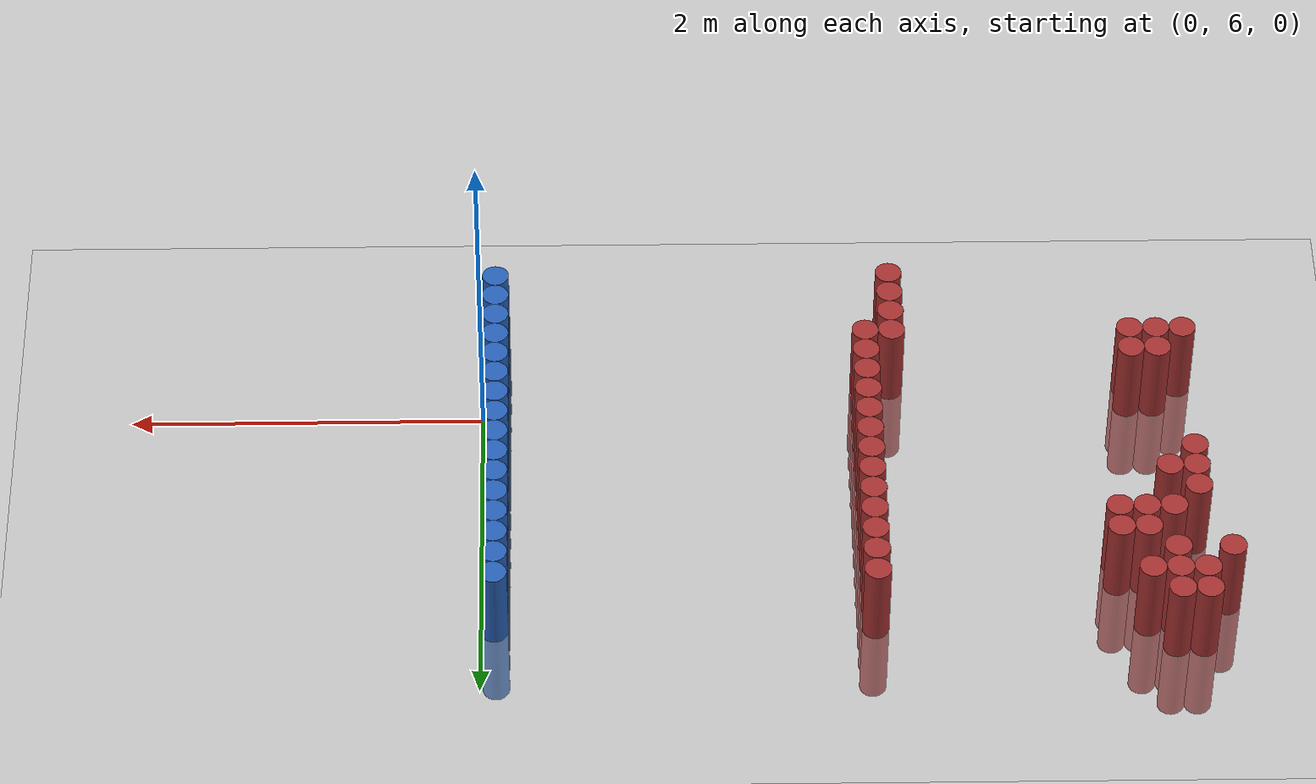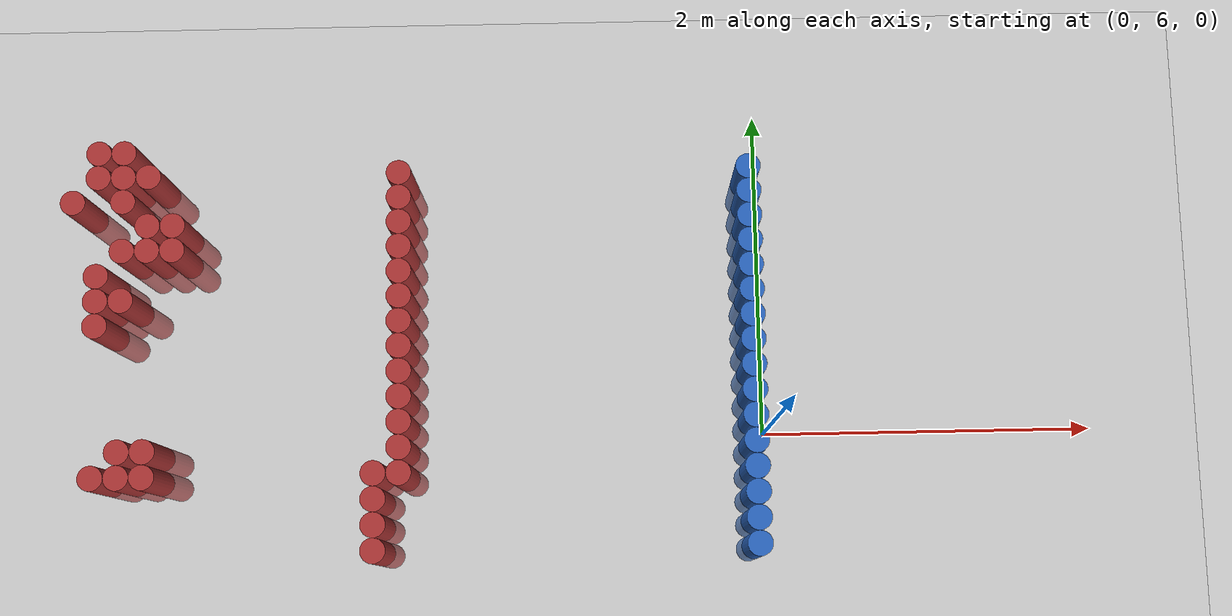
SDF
<sdf version="1.6">
 <world name="default">
  <model name="ground_plane">
   <static>1</static>
   <link name="link">
    <collision name="collision">
     <geometry><plane><normal>0 0 1</normal><size>100 100</size></plane></geometry>
     <surface><friction><ode><mu>100</mu><mu2>50</mu2></ode></friction></surface>
    </collision>
    <visual name="visual">
     <cast_shadows>0</cast_shadows>
     <geometry><plane><normal>0 0 1</normal><size>100 100</size></plane></geometry>
     <material>
      <script><uri>file://media/materials/scripts/gazebo.material</uri><name>Gazebo/Grey</name></script>
     </material>
    </visual>
   </link>
  </model>
  <model name="unit_cylinder_255">
   <static>1</static>
   <pose>-4.125000 7.425000 0.000000 0.000000 0.000000 0.000000</pose>
   <link name="link">
    <inertial>
     <mass>1</mass>
     <inertia><ixx>0.145833</ixx><ixy>0</ixy><ixz>0</ixz><iyy>0.145833</iyy><iyz>0</iyz><izz>0.125</izz></inertia>
    </inertial>
    <collision name="collision">
     <geometry><cylinder><radius>0.075000</radius><length>1</length></cylinder></geometry>
    </collision>
    <visual name="visual">
     <geometry><cylinder><radius>0.075000</radius><length>1</length></cylinder></geometry>
     <material>
      <ambient>0.648000 0.192000 0.192000 1</ambient>
      <diffuse>0.648000 0.192000 0.192000 1</diffuse>
     </material>
     <material>
      <script><name>Gazebo/Grey</name><uri>file://media/materials/scripts/gazebo.material</uri></script>
     </material>
    </visual>
   </link>
  </model>
  <model name="unit_cylinder_256">
   <static>1</static>
   <pose>-3.975000 5.775000 0.000000 0.000000 0.000000 0.000000</pose>
   <link name="link">
    <inertial>
     <mass>1</mass>
     <inertia><ixx>0.145833</ixx><ixy>0</ixy><ixz>0</ixz><iyy>0.145833</iyy><iyz>0</iyz><izz>0.125</izz></inertia>
    </inertial>
    <collision name="collision">
     <geometry><cylinder><radius>0.075000</radius><length>1</length></cylinder></geometry>
    </collision>
    <visual name="visual">
     <geometry><cylinder><radius>0.075000</radius><length>1</length></cylinder></geometry>
     <material>
      <ambient>0.648000 0.192000 0.192000 1</ambient>
      <diffuse>0.648000 0.192000 0.192000 1</diffuse>
     </material>
     <material>
      <script><name>Gazebo/Grey</name><uri>file://media/materials/scripts/gazebo.material</uri></script>
     </material>
    </visual>
   </link>
  </model>
  <model name="unit_cylinder_257">
   <static>1</static>
   <pose>-3.975000 6.675000 0.000000 0.000000 0.000000 0.000000</pose>
   <link name="link">
    <inertial>
     <mass>1</mass>
     <inertia><ixx>0.145833</ixx><ixy>0</ixy><ixz>0</ixz><iyy>0.145833</iyy><iyz>0</iyz><izz>0.125</izz></inertia>
    </inertial>
    <collision name="collision">
     <geometry><cylinder><radius>0.075000</radius><length>1</length></cylinder></geometry>
    </collision>
    <visual name="visual">
     <geometry><cylinder><radius>0.075000</radius><length>1</length></cylinder></geometry>
     <material>
      <ambient>0.648000 0.192000 0.192000 1</ambient>
      <diffuse>0.648000 0.192000 0.192000 1</diffuse>
     </material>
     <material>
      <script><name>Gazebo/Grey</name><uri>file://media/materials/scripts/gazebo.material</uri></script>
     </material>
    </visual>
   </link>
  </model>
  <model name="unit_cylinder_258">
   <static>1</static>
   <pose>-3.975000 6.825000 0.000000 0.000000 0.000000 0.000000</pose>
   <link name="link">
    <inertial>
     <mass>1</mass>
     <inertia><ixx>0.145833</ixx><ixy>0</ixy><ixz>0</ixz><iyy>0.145833</iyy><iyz>0</iyz><izz>0.125</izz></inertia>
    </inertial>
    <collision name="collision">
     <geometry><cylinder><radius>0.075000</radius><length>1</length></cylinder></geometry>
    </collision>
    <visual name="visual">
     <geometry><cylinder><radius>0.075000</radius><length>1</length></cylinder></geometry>
     <material>
      <ambient>0.648000 0.192000 0.192000 1</ambient>
      <diffuse>0.648000 0.192000 0.192000 1</diffuse>
     </material>
     <material>
      <script><name>Gazebo/Grey</name><uri>file://media/materials/scripts/gazebo.material</uri></script>
     </material>
    </visual>
   </link>
  </model>
  <model name="unit_cylinder_259">
   <static>1</static>
   <pose>-3.975000 6.975000 0.000000 0.000000 0.000000 0.000000</pose>
   <link name="link">
    <inertial>
     <mass>1</mass>
     <inertia><ixx>0.145833</ixx><ixy>0</ixy><ixz>0</ixz><iyy>0.145833</iyy><iyz>0</iyz><izz>0.125</izz></inertia>
    </inertial>
    <collision name="collision">
     <geometry><cylinder><radius>0.075000</radius><length>1</length></cylinder></geometry>
    </collision>
    <visual name="visual">
     <geometry><cylinder><radius>0.075000</radius><length>1</length></cylinder></geometry>
     <material>
      <ambient>0.648000 0.192000 0.192000 1</ambient>
      <diffuse>0.648000 0.192000 0.192000 1</diffuse>
     </material>
     <material>
      <script><name>Gazebo/Grey</name><uri>file://media/materials/scripts/gazebo.material</uri></script>
     </material>
    </visual>
   </link>
  </model>
  <model name="unit_cylinder_260">
   <static>1</static>
   <pose>-3.975000 7.575000 0.000000 0.000000 0.000000 0.000000</pose>
   <link name="link">
    <inertial>
     <mass>1</mass>
     <inertia><ixx>0.145833</ixx><ixy>0</ixy><ixz>0</ixz><iyy>0.145833</iyy><iyz>0</iyz><izz>0.125</izz></inertia>
    </inertial>
    <collision name="collision">
     <geometry><cylinder><radius>0.075000</radius><length>1</length></cylinder></geometry>
    </collision>
    <visual name="visual">
     <geometry><cylinder><radius>0.075000</radius><length>1</length></cylinder></geometry>
     <material>
      <ambient>0.648000 0.192000 0.192000 1</ambient>
      <diffuse>0.648000 0.192000 0.192000 1</diffuse>
     </material>
     <material>
      <script><name>Gazebo/Grey</name><uri>file://media/materials/scripts/gazebo.material</uri></script>
     </material>
    </visual>
   </link>
  </model>
  <model name="unit_cylinder_261">
   <static>1</static>
   <pose>-3.975000 7.725000 0.000000 0.000000 0.000000 0.000000</pose>
   <link name="link">
    <inertial>
     <mass>1</mass>
     <inertia><ixx>0.145833</ixx><ixy>0</ixy><ixz>0</ixz><iyy>0.145833</iyy><iyz>0</iyz><izz>0.125</izz></inertia>
    </inertial>
    <collision name="collision">
     <geometry><cylinder><radius>0.075000</radius><length>1</length></cylinder></geometry>
    </collision>
    <visual name="visual">
     <geometry><cylinder><radius>0.075000</radius><length>1</length></cylinder></geometry>
     <material>
      <ambient>0.648000 0.192000 0.192000 1</ambient>
      <diffuse>0.648000 0.192000 0.192000 1</diffuse>
     </material>
     <material>
      <script><name>Gazebo/Grey</name><uri>file://media/materials/scripts/gazebo.material</uri></script>
     </material>
    </visual>
   </link>
  </model>
  <model name="unit_cylinder_262">
   <static>1</static>
   <pose>-3.825000 5.775000 0.000000 0.000000 0.000000 0.000000</pose>
   <link name="link">
    <inertial>
     <mass>1</mass>
     <inertia><ixx>0.145833</ixx><ixy>0</ixy><ixz>0</ixz><iyy>0.145833</iyy><iyz>0</iyz><izz>0.125</izz></inertia>
    </inertial>
    <collision name="collision">
     <geometry><cylinder><radius>0.075000</radius><length>1</length></cylinder></geometry>
    </collision>
    <visual name="visual">
     <geometry><cylinder><radius>0.075000</radius><length>1</length></cylinder></geometry>
     <material>
      <ambient>0.648000 0.192000 0.192000 1</ambient>
      <diffuse>0.648000 0.192000 0.192000 1</diffuse>
     </material>
     <material>
      <script><name>Gazebo/Grey</name><uri>file://media/materials/scripts/gazebo.material</uri></script>
     </material>
    </visual>
   </link>
  </model>
  <model name="unit_cylinder_263">
   <static>1</static>
   <pose>-3.825000 5.925000 0.000000 0.000000 0.000000 0.000000</pose>
   <link name="link">
    <inertial>
     <mass>1</mass>
     <inertia><ixx>0.145833</ixx><ixy>0</ixy><ixz>0</ixz><iyy>0.145833</iyy><iyz>0</iyz><izz>0.125</izz></inertia>
    </inertial>
    <collision name="collision">
     <geometry><cylinder><radius>0.075000</radius><length>1</length></cylinder></geometry>
    </collision>
    <visual name="visual">
     <geometry><cylinder><radius>0.075000</radius><length>1</length></cylinder></geometry>
     <material>
      <ambient>0.648000 0.192000 0.192000 1</ambient>
      <diffuse>0.648000 0.192000 0.192000 1</diffuse>
     </material>
     <material>
      <script><name>Gazebo/Grey</name><uri>file://media/materials/scripts/gazebo.material</uri></script>
     </material>
    </visual>
   </link>
  </model>
  <model name="unit_cylinder_264">
   <static>1</static>
   <pose>-3.825000 6.825000 0.000000 0.000000 0.000000 0.000000</pose>
   <link name="link">
    <inertial>
     <mass>1</mass>
     <inertia><ixx>0.145833</ixx><ixy>0</ixy><ixz>0</ixz><iyy>0.145833</iyy><iyz>0</iyz><izz>0.125</izz></inertia>
    </inertial>
    <collision name="collision">
     <geometry><cylinder><radius>0.075000</radius><length>1</length></cylinder></geometry>
    </collision>
    <visual name="visual">
     <geometry><cylinder><radius>0.075000</radius><length>1</length></cylinder></geometry>
     <material>
      <ambient>0.648000 0.192000 0.192000 1</ambient>
      <diffuse>0.648000 0.192000 0.192000 1</diffuse>
     </material>
     <material>
      <script><name>Gazebo/Grey</name><uri>file://media/materials/scripts/gazebo.material</uri></script>
     </material>
    </visual>
   </link>
  </model>
  <model name="unit_cylinder_265">
   <static>1</static>
   <pose>-3.825000 7.125000 0.000000 0.000000 0.000000 0.000000</pose>
   <link name="link">
    <inertial>
     <mass>1</mass>
     <inertia><ixx>0.145833</ixx><ixy>0</ixy><ixz>0</ixz><iyy>0.145833</iyy><iyz>0</iyz><izz>0.125</izz></inertia>
    </inertial>
    <collision name="collision">
     <geometry><cylinder><radius>0.075000</radius><length>1</length></cylinder></geometry>
    </collision>
    <visual name="visual">
     <geometry><cylinder><radius>0.075000</radius><length>1</length></cylinder></geometry>
     <material>
      <ambient>0.648000 0.192000 0.192000 1</ambient>
      <diffuse>0.648000 0.192000 0.192000 1</diffuse>
     </material>
     <material>
      <script><name>Gazebo/Grey</name><uri>file://media/materials/scripts/gazebo.material</uri></script>
     </material>
    </visual>
   </link>
  </model>
  <model name="unit_cylinder_266">
   <static>1</static>
   <pose>-3.825000 7.425000 0.000000 0.000000 0.000000 0.000000</pose>
   <link name="link">
    <inertial>
     <mass>1</mass>
     <inertia><ixx>0.145833</ixx><ixy>0</ixy><ixz>0</ixz><iyy>0.145833</iyy><iyz>0</iyz><izz>0.125</izz></inertia>
    </inertial>
    <collision name="collision">
     <geometry><cylinder><radius>0.075000</radius><length>1</length></cylinder></geometry>
    </collision>
    <visual name="visual">
     <geometry><cylinder><radius>0.075000</radius><length>1</length></cylinder></geometry>
     <material>
      <ambient>0.648000 0.192000 0.192000 1</ambient>
      <diffuse>0.648000 0.192000 0.192000 1</diffuse>
     </material>
     <material>
      <script><name>Gazebo/Grey</name><uri>file://media/materials/scripts/gazebo.material</uri></script>
     </material>
    </visual>
   </link>
  </model>
  <model name="unit_cylinder_267">
   <static>1</static>
   <pose>-3.825000 7.575000 0.000000 0.000000 0.000000 0.000000</pose>
   <link name="link">
    <inertial>
     <mass>1</mass>
     <inertia><ixx>0.145833</ixx><ixy>0</ixy><ixz>0</ixz><iyy>0.145833</iyy><iyz>0</iyz><izz>0.125</izz></inertia>
    </inertial>
    <collision name="collision">
     <geometry><cylinder><radius>0.075000</radius><length>1</length></cylinder></geometry>
    </collision>
    <visual name="visual">
     <geometry><cylinder><radius>0.075000</radius><length>1</length></cylinder></geometry>
     <material>
      <ambient>0.648000 0.192000 0.192000 1</ambient>
      <diffuse>0.648000 0.192000 0.192000 1</diffuse>
     </material>
     <material>
      <script><name>Gazebo/Grey</name><uri>file://media/materials/scripts/gazebo.material</uri></script>
     </material>
    </visual>
   </link>
  </model>
  <model name="unit_cylinder_268">
   <static>1</static>
   <pose>-3.825000 7.725000 0.000000 0.000000 0.000000 0.000000</pose>
   <link name="link">
    <inertial>
     <mass>1</mass>
     <inertia><ixx>0.145833</ixx><ixy>0</ixy><ixz>0</ixz><iyy>0.145833</iyy><iyz>0</iyz><izz>0.125</izz></inertia>
    </inertial>
    <collision name="collision">
     <geometry><cylinder><radius>0.075000</radius><length>1</length></cylinder></geometry>
    </collision>
    <visual name="visual">
     <geometry><cylinder><radius>0.075000</radius><length>1</length></cylinder></geometry>
     <material>
      <ambient>0.648000 0.192000 0.192000 1</ambient>
      <diffuse>0.648000 0.192000 0.192000 1</diffuse>
     </material>
     <material>
      <script><name>Gazebo/Grey</name><uri>file://media/materials/scripts/gazebo.material</uri></script>
     </material>
    </visual>
   </link>
  </model>
  <model name="unit_cylinder_269">
   <static>1</static>
   <pose>-3.675000 5.775000 0.000000 0.000000 0.000000 0.000000</pose>
   <link name="link">
    <inertial>
     <mass>1</mass>
     <inertia><ixx>0.145833</ixx><ixy>0</ixy><ixz>0</ixz><iyy>0.145833</iyy><iyz>0</iyz><izz>0.125</izz></inertia>
    </inertial>
    <collision name="collision">
     <geometry><cylinder><radius>0.075000</radius><length>1</length></cylinder></geometry>
    </collision>
    <visual name="visual">
     <geometry><cylinder><radius>0.075000</radius><length>1</length></cylinder></geometry>
     <material>
      <ambient>0.648000 0.192000 0.192000 1</ambient>
      <diffuse>0.648000 0.192000 0.192000 1</diffuse>
     </material>
     <material>
      <script><name>Gazebo/Grey</name><uri>file://media/materials/scripts/gazebo.material</uri></script>
     </material>
    </visual>
   </link>
  </model>
  <model name="unit_cylinder_270">
   <static>1</static>
   <pose>-3.675000 5.925000 0.000000 0.000000 0.000000 0.000000</pose>
   <link name="link">
    <inertial>
     <mass>1</mass>
     <inertia><ixx>0.145833</ixx><ixy>0</ixy><ixz>0</ixz><iyy>0.145833</iyy><iyz>0</iyz><izz>0.125</izz></inertia>
    </inertial>
    <collision name="collision">
     <geometry><cylinder><radius>0.075000</radius><length>1</length></cylinder></geometry>
    </collision>
    <visual name="visual">
     <geometry><cylinder><radius>0.075000</radius><length>1</length></cylinder></geometry>
     <material>
      <ambient>0.648000 0.192000 0.192000 1</ambient>
      <diffuse>0.648000 0.192000 0.192000 1</diffuse>
     </material>
     <material>
      <script><name>Gazebo/Grey</name><uri>file://media/materials/scripts/gazebo.material</uri></script>
     </material>
    </visual>
   </link>
  </model>
  <model name="unit_cylinder_271">
   <static>1</static>
   <pose>-3.675000 7.125000 0.000000 0.000000 0.000000 0.000000</pose>
   <link name="link">
    <inertial>
     <mass>1</mass>
     <inertia><ixx>0.145833</ixx><ixy>0</ixy><ixz>0</ixz><iyy>0.145833</iyy><iyz>0</iyz><izz>0.125</izz></inertia>
    </inertial>
    <collision name="collision">
     <geometry><cylinder><radius>0.075000</radius><length>1</length></cylinder></geometry>
    </collision>
    <visual name="visual">
     <geometry><cylinder><radius>0.075000</radius><length>1</length></cylinder></geometry>
     <material>
      <ambient>0.648000 0.192000 0.192000 1</ambient>
      <diffuse>0.648000 0.192000 0.192000 1</diffuse>
     </material>
     <material>
      <script><name>Gazebo/Grey</name><uri>file://media/materials/scripts/gazebo.material</uri></script>
     </material>
    </visual>
   </link>
  </model>
  <model name="unit_cylinder_272">
   <static>1</static>
   <pose>-3.675000 7.275000 0.000000 0.000000 0.000000 0.000000</pose>
   <link name="link">
    <inertial>
     <mass>1</mass>
     <inertia><ixx>0.145833</ixx><ixy>0</ixy><ixz>0</ixz><iyy>0.145833</iyy><iyz>0</iyz><izz>0.125</izz></inertia>
    </inertial>
    <collision name="collision">
     <geometry><cylinder><radius>0.075000</radius><length>1</length></cylinder></geometry>
    </collision>
    <visual name="visual">
     <geometry><cylinder><radius>0.075000</radius><length>1</length></cylinder></geometry>
     <material>
      <ambient>0.648000 0.192000 0.192000 1</ambient>
      <diffuse>0.648000 0.192000 0.192000 1</diffuse>
     </material>
     <material>
      <script><name>Gazebo/Grey</name><uri>file://media/materials/scripts/gazebo.material</uri></script>
     </material>
    </visual>
   </link>
  </model>
  <model name="unit_cylinder_273">
   <static>1</static>
   <pose>-3.675000 7.575000 0.000000 0.000000 0.000000 0.000000</pose>
   <link name="link">
    <inertial>
     <mass>1</mass>
     <inertia><ixx>0.145833</ixx><ixy>0</ixy><ixz>0</ixz><iyy>0.145833</iyy><iyz>0</iyz><izz>0.125</izz></inertia>
    </inertial>
    <collision name="collision">
     <geometry><cylinder><radius>0.075000</radius><length>1</length></cylinder></geometry>
    </collision>
    <visual name="visual">
     <geometry><cylinder><radius>0.075000</radius><length>1</length></cylinder></geometry>
     <material>
      <ambient>0.648000 0.192000 0.192000 1</ambient>
      <diffuse>0.648000 0.192000 0.192000 1</diffuse>
     </material>
     <material>
      <script><name>Gazebo/Grey</name><uri>file://media/materials/scripts/gazebo.material</uri></script>
     </material>
    </visual>
   </link>
  </model>
  <model name="unit_cylinder_274">
   <static>1</static>
   <pose>-3.525000 7.125000 0.000000 0.000000 0.000000 0.000000</pose>
   <link name="link">
    <inertial>
     <mass>1</mass>
     <inertia><ixx>0.145833</ixx><ixy>0</ixy><ixz>0</ixz><iyy>0.145833</iyy><iyz>0</iyz><izz>0.125</izz></inertia>
    </inertial>
    <collision name="collision">
     <geometry><cylinder><radius>0.075000</radius><length>1</length></cylinder></geometry>
    </collision>
    <visual name="visual">
     <geometry><cylinder><radius>0.075000</radius><length>1</length></cylinder></geometry>
     <material>
      <ambient>0.648000 0.192000 0.192000 1</ambient>
      <diffuse>0.648000 0.192000 0.192000 1</diffuse>
     </material>
     <material>
      <script><name>Gazebo/Grey</name><uri>file://media/materials/scripts/gazebo.material</uri></script>
     </material>
    </visual>
   </link>
  </model>
  <model name="unit_cylinder_275">
   <static>1</static>
   <pose>-3.525000 7.275000 0.000000 0.000000 0.000000 0.000000</pose>
   <link name="link">
    <inertial>
     <mass>1</mass>
     <inertia><ixx>0.145833</ixx><ixy>0</ixy><ixz>0</ixz><iyy>0.145833</iyy><iyz>0</iyz><izz>0.125</izz></inertia>
    </inertial>
    <collision name="collision">
     <geometry><cylinder><radius>0.075000</radius><length>1</length></cylinder></geometry>
    </collision>
    <visual name="visual">
     <geometry><cylinder><radius>0.075000</radius><length>1</length></cylinder></geometry>
     <material>
      <ambient>0.648000 0.192000 0.192000 1</ambient>
      <diffuse>0.648000 0.192000 0.192000 1</diffuse>
     </material>
     <material>
      <script><name>Gazebo/Grey</name><uri>file://media/materials/scripts/gazebo.material</uri></script>
     </material>
    </visual>
   </link>
  </model>
  <model name="unit_cylinder_294">
   <static>1</static>
   <pose>-2.325000 5.325000 0.000000 0.000000 0.000000 0.000000</pose>
   <link name="link">
    <inertial>
     <mass>1</mass>
     <inertia><ixx>0.145833</ixx><ixy>0</ixy><ixz>0</ixz><iyy>0.145833</iyy><iyz>0</iyz><izz>0.125</izz></inertia>
    </inertial>
    <collision name="collision">
     <geometry><cylinder><radius>0.075000</radius><length>1</length></cylinder></geometry>
    </collision>
    <visual name="visual">
     <geometry><cylinder><radius>0.075000</radius><length>1</length></cylinder></geometry>
     <material>
      <ambient>0.648000 0.192000 0.192000 1</ambient>
      <diffuse>0.648000 0.192000 0.192000 1</diffuse>
     </material>
     <material>
      <script><name>Gazebo/Grey</name><uri>file://media/materials/scripts/gazebo.material</uri></script>
     </material>
    </visual>
   </link>
  </model>
  <model name="unit_cylinder_295">
   <static>1</static>
   <pose>-2.325000 5.475000 0.000000 0.000000 0.000000 0.000000</pose>
   <link name="link">
    <inertial>
     <mass>1</mass>
     <inertia><ixx>0.145833</ixx><ixy>0</ixy><ixz>0</ixz><iyy>0.145833</iyy><iyz>0</iyz><izz>0.125</izz></inertia>
    </inertial>
    <collision name="collision">
     <geometry><cylinder><radius>0.075000</radius><length>1</length></cylinder></geometry>
    </collision>
    <visual name="visual">
     <geometry><cylinder><radius>0.075000</radius><length>1</length></cylinder></geometry>
     <material>
      <ambient>0.648000 0.192000 0.192000 1</ambient>
      <diffuse>0.648000 0.192000 0.192000 1</diffuse>
     </material>
     <material>
      <script><name>Gazebo/Grey</name><uri>file://media/materials/scripts/gazebo.material</uri></script>
     </material>
    </visual>
   </link>
  </model>
  <model name="unit_cylinder_296">
   <static>1</static>
   <pose>-2.325000 5.625000 0.000000 0.000000 0.000000 0.000000</pose>
   <link name="link">
    <inertial>
     <mass>1</mass>
     <inertia><ixx>0.145833</ixx><ixy>0</ixy><ixz>0</ixz><iyy>0.145833</iyy><iyz>0</iyz><izz>0.125</izz></inertia>
    </inertial>
    <collision name="collision">
     <geometry><cylinder><radius>0.075000</radius><length>1</length></cylinder></geometry>
    </collision>
    <visual name="visual">
     <geometry><cylinder><radius>0.075000</radius><length>1</length></cylinder></geometry>
     <material>
      <ambient>0.648000 0.192000 0.192000 1</ambient>
      <diffuse>0.648000 0.192000 0.192000 1</diffuse>
     </material>
     <material>
      <script><name>Gazebo/Grey</name><uri>file://media/materials/scripts/gazebo.material</uri></script>
     </material>
    </visual>
   </link>
  </model>
  <model name="unit_cylinder_297">
   <static>1</static>
   <pose>-2.325000 5.775000 0.000000 0.000000 0.000000 0.000000</pose>
   <link name="link">
    <inertial>
     <mass>1</mass>
     <inertia><ixx>0.145833</ixx><ixy>0</ixy><ixz>0</ixz><iyy>0.145833</iyy><iyz>0</iyz><izz>0.125</izz></inertia>
    </inertial>
    <collision name="collision">
     <geometry><cylinder><radius>0.075000</radius><length>1</length></cylinder></geometry>
    </collision>
    <visual name="visual">
     <geometry><cylinder><radius>0.075000</radius><length>1</length></cylinder></geometry>
     <material>
      <ambient>0.648000 0.192000 0.192000 1</ambient>
      <diffuse>0.648000 0.192000 0.192000 1</diffuse>
     </material>
     <material>
      <script><name>Gazebo/Grey</name><uri>file://media/materials/scripts/gazebo.material</uri></script>
     </material>
    </visual>
   </link>
  </model>
  <model name="unit_cylinder_303">
   <static>1</static>
   <pose>-2.175000 5.775000 0.000000 0.000000 0.000000 0.000000</pose>
   <link name="link">
    <inertial>
     <mass>1</mass>
     <inertia><ixx>0.145833</ixx><ixy>0</ixy><ixz>0</ixz><iyy>0.145833</iyy><iyz>0</iyz><izz>0.125</izz></inertia>
    </inertial>
    <collision name="collision">
     <geometry><cylinder><radius>0.075000</radius><length>1</length></cylinder></geometry>
    </collision>
    <visual name="visual">
     <geometry><cylinder><radius>0.075000</radius><length>1</length></cylinder></geometry>
     <material>
      <ambient>0.648000 0.192000 0.192000 1</ambient>
      <diffuse>0.648000 0.192000 0.192000 1</diffuse>
     </material>
     <material>
      <script><name>Gazebo/Grey</name><uri>file://media/materials/scripts/gazebo.material</uri></script>
     </material>
    </visual>
   </link>
  </model>
  <model name="unit_cylinder_304">
   <static>1</static>
   <pose>-2.175000 5.925000 0.000000 0.000000 0.000000 0.000000</pose>
   <link name="link">
    <inertial>
     <mass>1</mass>
     <inertia><ixx>0.145833</ixx><ixy>0</ixy><ixz>0</ixz><iyy>0.145833</iyy><iyz>0</iyz><izz>0.125</izz></inertia>
    </inertial>
    <collision name="collision">
     <geometry><cylinder><radius>0.075000</radius><length>1</length></cylinder></geometry>
    </collision>
    <visual name="visual">
     <geometry><cylinder><radius>0.075000</radius><length>1</length></cylinder></geometry>
     <material>
      <ambient>0.648000 0.192000 0.192000 1</ambient>
      <diffuse>0.648000 0.192000 0.192000 1</diffuse>
     </material>
     <material>
      <script><name>Gazebo/Grey</name><uri>file://media/materials/scripts/gazebo.material</uri></script>
     </material>
    </visual>
   </link>
  </model>
  <model name="unit_cylinder_305">
   <static>1</static>
   <pose>-2.175000 6.075000 0.000000 0.000000 0.000000 0.000000</pose>
   <link name="link">
    <inertial>
     <mass>1</mass>
     <inertia><ixx>0.145833</ixx><ixy>0</ixy><ixz>0</ixz><iyy>0.145833</iyy><iyz>0</iyz><izz>0.125</izz></inertia>
    </inertial>
    <collision name="collision">
     <geometry><cylinder><radius>0.075000</radius><length>1</length></cylinder></geometry>
    </collision>
    <visual name="visual">
     <geometry><cylinder><radius>0.075000</radius><length>1</length></cylinder></geometry>
     <material>
      <ambient>0.648000 0.192000 0.192000 1</ambient>
      <diffuse>0.648000 0.192000 0.192000 1</diffuse>
     </material>
     <material>
      <script><name>Gazebo/Grey</name><uri>file://media/materials/scripts/gazebo.material</uri></script>
     </material>
    </visual>
   </link>
  </model>
  <model name="unit_cylinder_306">
   <static>1</static>
   <pose>-2.175000 6.225000 0.000000 0.000000 0.000000 0.000000</pose>
   <link name="link">
    <inertial>
     <mass>1</mass>
     <inertia><ixx>0.145833</ixx><ixy>0</ixy><ixz>0</ixz><iyy>0.145833</iyy><iyz>0</iyz><izz>0.125</izz></inertia>
    </inertial>
    <collision name="collision">
     <geometry><cylinder><radius>0.075000</radius><length>1</length></cylinder></geometry>
    </collision>
    <visual name="visual">
     <geometry><cylinder><radius>0.075000</radius><length>1</length></cylinder></geometry>
     <material>
      <ambient>0.648000 0.192000 0.192000 1</ambient>
      <diffuse>0.648000 0.192000 0.192000 1</diffuse>
     </material>
     <material>
      <script><name>Gazebo/Grey</name><uri>file://media/materials/scripts/gazebo.material</uri></script>
     </material>
    </visual>
   </link>
  </model>
  <model name="unit_cylinder_307">
   <static>1</static>
   <pose>-2.175000 6.375000 0.000000 0.000000 0.000000 0.000000</pose>
   <link name="link">
    <inertial>
     <mass>1</mass>
     <inertia><ixx>0.145833</ixx><ixy>0</ixy><ixz>0</ixz><iyy>0.145833</iyy><iyz>0</iyz><izz>0.125</izz></inertia>
    </inertial>
    <collision name="collision">
     <geometry><cylinder><radius>0.075000</radius><length>1</length></cylinder></geometry>
    </collision>
    <visual name="visual">
     <geometry><cylinder><radius>0.075000</radius><length>1</length></cylinder></geometry>
     <material>
      <ambient>0.648000 0.192000 0.192000 1</ambient>
      <diffuse>0.648000 0.192000 0.192000 1</diffuse>
     </material>
     <material>
      <script><name>Gazebo/Grey</name><uri>file://media/materials/scripts/gazebo.material</uri></script>
     </material>
    </visual>
   </link>
  </model>
  <model name="unit_cylinder_308">
   <static>1</static>
   <pose>-2.175000 6.525000 0.000000 0.000000 0.000000 0.000000</pose>
   <link name="link">
    <inertial>
     <mass>1</mass>
     <inertia><ixx>0.145833</ixx><ixy>0</ixy><ixz>0</ixz><iyy>0.145833</iyy><iyz>0</iyz><izz>0.125</izz></inertia>
    </inertial>
    <collision name="collision">
     <geometry><cylinder><radius>0.075000</radius><length>1</length></cylinder></geometry>
    </collision>
    <visual name="visual">
     <geometry><cylinder><radius>0.075000</radius><length>1</length></cylinder></geometry>
     <material>
      <ambient>0.648000 0.192000 0.192000 1</ambient>
      <diffuse>0.648000 0.192000 0.192000 1</diffuse>
     </material>
     <material>
      <script><name>Gazebo/Grey</name><uri>file://media/materials/scripts/gazebo.material</uri></script>
     </material>
    </visual>
   </link>
  </model>
  <model name="unit_cylinder_309">
   <static>1</static>
   <pose>-2.175000 6.675000 0.000000 0.000000 0.000000 0.000000</pose>
   <link name="link">
    <inertial>
     <mass>1</mass>
     <inertia><ixx>0.145833</ixx><ixy>0</ixy><ixz>0</ixz><iyy>0.145833</iyy><iyz>0</iyz><izz>0.125</izz></inertia>
    </inertial>
    <collision name="collision">
     <geometry><cylinder><radius>0.075000</radius><length>1</length></cylinder></geometry>
    </collision>
    <visual name="visual">
     <geometry><cylinder><radius>0.075000</radius><length>1</length></cylinder></geometry>
     <material>
      <ambient>0.648000 0.192000 0.192000 1</ambient>
      <diffuse>0.648000 0.192000 0.192000 1</diffuse>
     </material>
     <material>
      <script><name>Gazebo/Grey</name><uri>file://media/materials/scripts/gazebo.material</uri></script>
     </material>
    </visual>
   </link>
  </model>
  <model name="unit_cylinder_310">
   <static>1</static>
   <pose>-2.175000 6.825000 0.000000 0.000000 0.000000 0.000000</pose>
   <link name="link">
    <inertial>
     <mass>1</mass>
     <inertia><ixx>0.145833</ixx><ixy>0</ixy><ixz>0</ixz><iyy>0.145833</iyy><iyz>0</iyz><izz>0.125</izz></inertia>
    </inertial>
    <collision name="collision">
     <geometry><cylinder><radius>0.075000</radius><length>1</length></cylinder></geometry>
    </collision>
    <visual name="visual">
     <geometry><cylinder><radius>0.075000</radius><length>1</length></cylinder></geometry>
     <material>
      <ambient>0.648000 0.192000 0.192000 1</ambient>
      <diffuse>0.648000 0.192000 0.192000 1</diffuse>
     </material>
     <material>
      <script><name>Gazebo/Grey</name><uri>file://media/materials/scripts/gazebo.material</uri></script>
     </material>
    </visual>
   </link>
  </model>
  <model name="unit_cylinder_311">
   <static>1</static>
   <pose>-2.175000 6.975000 0.000000 0.000000 0.000000 0.000000</pose>
   <link name="link">
    <inertial>
     <mass>1</mass>
     <inertia><ixx>0.145833</ixx><ixy>0</ixy><ixz>0</ixz><iyy>0.145833</iyy><iyz>0</iyz><izz>0.125</izz></inertia>
    </inertial>
    <collision name="collision">
     <geometry><cylinder><radius>0.075000</radius><length>1</length></cylinder></geometry>
    </collision>
    <visual name="visual">
     <geometry><cylinder><radius>0.075000</radius><length>1</length></cylinder></geometry>
     <material>
      <ambient>0.648000 0.192000 0.192000 1</ambient>
      <diffuse>0.648000 0.192000 0.192000 1</diffuse>
     </material>
     <material>
      <script><name>Gazebo/Grey</name><uri>file://media/materials/scripts/gazebo.material</uri></script>
     </material>
    </visual>
   </link>
  </model>
  <model name="unit_cylinder_312">
   <static>1</static>
   <pose>-2.175000 7.125000 0.000000 0.000000 0.000000 0.000000</pose>
   <link name="link">
    <inertial>
     <mass>1</mass>
     <inertia><ixx>0.145833</ixx><ixy>0</ixy><ixz>0</ixz><iyy>0.145833</iyy><iyz>0</iyz><izz>0.125</izz></inertia>
    </inertial>
    <collision name="collision">
     <geometry><cylinder><radius>0.075000</radius><length>1</length></cylinder></geometry>
    </collision>
    <visual name="visual">
     <geometry><cylinder><radius>0.075000</radius><length>1</length></cylinder></geometry>
     <material>
      <ambient>0.648000 0.192000 0.192000 1</ambient>
      <diffuse>0.648000 0.192000 0.192000 1</diffuse>
     </material>
     <material>
      <script><name>Gazebo/Grey</name><uri>file://media/materials/scripts/gazebo.material</uri></script>
     </material>
    </visual>
   </link>
  </model>
  <model name="unit_cylinder_313">
   <static>1</static>
   <pose>-2.175000 7.275000 0.000000 0.000000 0.000000 0.000000</pose>
   <link name="link">
    <inertial>
     <mass>1</mass>
     <inertia><ixx>0.145833</ixx><ixy>0</ixy><ixz>0</ixz><iyy>0.145833</iyy><iyz>0</iyz><izz>0.125</izz></inertia>
    </inertial>
    <collision name="collision">
     <geometry><cylinder><radius>0.075000</radius><length>1</length></cylinder></geometry>
    </collision>
    <visual name="visual">
     <geometry><cylinder><radius>0.075000</radius><length>1</length></cylinder></geometry>
     <material>
      <ambient>0.648000 0.192000 0.192000 1</ambient>
      <diffuse>0.648000 0.192000 0.192000 1</diffuse>
     </material>
     <material>
      <script><name>Gazebo/Grey</name><uri>file://media/materials/scripts/gazebo.material</uri></script>
     </material>
    </visual>
   </link>
  </model>
  <model name="unit_cylinder_314">
   <static>1</static>
   <pose>-2.175000 7.425000 0.000000 0.000000 0.000000 0.000000</pose>
   <link name="link">
    <inertial>
     <mass>1</mass>
     <inertia><ixx>0.145833</ixx><ixy>0</ixy><ixz>0</ixz><iyy>0.145833</iyy><iyz>0</iyz><izz>0.125</izz></inertia>
    </inertial>
    <collision name="collision">
     <geometry><cylinder><radius>0.075000</radius><length>1</length></cylinder></geometry>
    </collision>
    <visual name="visual">
     <geometry><cylinder><radius>0.075000</radius><length>1</length></cylinder></geometry>
     <material>
      <ambient>0.648000 0.192000 0.192000 1</ambient>
      <diffuse>0.648000 0.192000 0.192000 1</diffuse>
     </material>
     <material>
      <script><name>Gazebo/Grey</name><uri>file://media/materials/scripts/gazebo.material</uri></script>
     </material>
    </visual>
   </link>
  </model>
  <model name="unit_cylinder_315">
   <static>1</static>
   <pose>-2.175000 7.575000 0.000000 0.000000 0.000000 0.000000</pose>
   <link name="link">
    <inertial>
     <mass>1</mass>
     <inertia><ixx>0.145833</ixx><ixy>0</ixy><ixz>0</ixz><iyy>0.145833</iyy><iyz>0</iyz><izz>0.125</izz></inertia>
    </inertial>
    <collision name="collision">
     <geometry><cylinder><radius>0.075000</radius><length>1</length></cylinder></geometry>
    </collision>
    <visual name="visual">
     <geometry><cylinder><radius>0.075000</radius><length>1</length></cylinder></geometry>
     <material>
      <ambient>0.648000 0.192000 0.192000 1</ambient>
      <diffuse>0.648000 0.192000 0.192000 1</diffuse>
     </material>
     <material>
      <script><name>Gazebo/Grey</name><uri>file://media/materials/scripts/gazebo.material</uri></script>
     </material>
    </visual>
   </link>
  </model>
  <model name="unit_cylinder_351">
   <static>1</static>
   <pose>-0.075000 5.325000 0.000000 0.000000 0.000000 0.000000</pose>
   <link name="link">
    <inertial>
     <mass>1</mass>
     <inertia><ixx>0.145833</ixx><ixy>0</ixy><ixz>0</ixz><iyy>0.145833</iyy><iyz>0</iyz><izz>0.125</izz></inertia>
    </inertial>
    <collision name="collision">
     <geometry><cylinder><radius>0.075000</radius><length>1</length></cylinder></geometry>
    </collision>
    <visual name="visual">
     <geometry><cylinder><radius>0.075000</radius><length>1</length></cylinder></geometry>
     <material>
      <ambient>0.152000 0.379000 0.720000 1</ambient>
      <diffuse>0.152000 0.379000 0.720000 1</diffuse>
     </material>
     <material>
      <script><name>Gazebo/Grey</name><uri>file://media/materials/scripts/gazebo.material</uri></script>
     </material>
    </visual>
   </link>
  </model>
  <model name="unit_cylinder_352">
   <static>1</static>
   <pose>-0.075000 5.475000 0.000000 0.000000 0.000000 0.000000</pose>
   <link name="link">
    <inertial>
     <mass>1</mass>
     <inertia><ixx>0.145833</ixx><ixy>0</ixy><ixz>0</ixz><iyy>0.145833</iyy><iyz>0</iyz><izz>0.125</izz></inertia>
    </inertial>
    <collision name="collision">
     <geometry><cylinder><radius>0.075000</radius><length>1</length></cylinder></geometry>
    </collision>
    <visual name="visual">
     <geometry><cylinder><radius>0.075000</radius><length>1</length></cylinder></geometry>
     <material>
      <ambient>0.152000 0.379000 0.720000 1</ambient>
      <diffuse>0.152000 0.379000 0.720000 1</diffuse>
     </material>
     <material>
      <script><name>Gazebo/Grey</name><uri>file://media/materials/scripts/gazebo.material</uri></script>
     </material>
    </visual>
   </link>
  </model>
  <model name="unit_cylinder_353">
   <static>1</static>
   <pose>-0.075000 5.625000 0.000000 0.000000 0.000000 0.000000</pose>
   <link name="link">
    <inertial>
     <mass>1</mass>
     <inertia><ixx>0.145833</ixx><ixy>0</ixy><ixz>0</ixz><iyy>0.145833</iyy><iyz>0</iyz><izz>0.125</izz></inertia>
    </inertial>
    <collision name="collision">
     <geometry><cylinder><radius>0.075000</radius><length>1</length></cylinder></geometry>
    </collision>
    <visual name="visual">
     <geometry><cylinder><radius>0.075000</radius><length>1</length></cylinder></geometry>
     <material>
      <ambient>0.152000 0.379000 0.720000 1</ambient>
      <diffuse>0.152000 0.379000 0.720000 1</diffuse>
     </material>
     <material>
      <script><name>Gazebo/Grey</name><uri>file://media/materials/scripts/gazebo.material</uri></script>
     </material>
    </visual>
   </link>
  </model>
  <model name="unit_cylinder_354">
   <static>1</static>
   <pose>-0.075000 5.775000 0.000000 0.000000 0.000000 0.000000</pose>
   <link name="link">
    <inertial>
     <mass>1</mass>
     <inertia><ixx>0.145833</ixx><ixy>0</ixy><ixz>0</ixz><iyy>0.145833</iyy><iyz>0</iyz><izz>0.125</izz></inertia>
    </inertial>
    <collision name="collision">
     <geometry><cylinder><radius>0.075000</radius><length>1</length></cylinder></geometry>
    </collision>
    <visual name="visual">
     <geometry><cylinder><radius>0.075000</radius><length>1</length></cylinder></geometry>
     <material>
      <ambient>0.152000 0.379000 0.720000 1</ambient>
      <diffuse>0.152000 0.379000 0.720000 1</diffuse>
     </material>
     <material>
      <script><name>Gazebo/Grey</name><uri>file://media/materials/scripts/gazebo.material</uri></script>
     </material>
    </visual>
   </link>
  </model>
  <model name="unit_cylinder_355">
   <static>1</static>
   <pose>-0.075000 5.925000 0.000000 0.000000 0.000000 0.000000</pose>
   <link name="link">
    <inertial>
     <mass>1</mass>
     <inertia><ixx>0.145833</ixx><ixy>0</ixy><ixz>0</ixz><iyy>0.145833</iyy><iyz>0</iyz><izz>0.125</izz></inertia>
    </inertial>
    <collision name="collision">
     <geometry><cylinder><radius>0.075000</radius><length>1</length></cylinder></geometry>
    </collision>
    <visual name="visual">
     <geometry><cylinder><radius>0.075000</radius><length>1</length></cylinder></geometry>
     <material>
      <ambient>0.152000 0.379000 0.720000 1</ambient>
      <diffuse>0.152000 0.379000 0.720000 1</diffuse>
     </material>
     <material>
      <script><name>Gazebo/Grey</name><uri>file://media/materials/scripts/gazebo.material</uri></script>
     </material>
    </visual>
   </link>
  </model>
  <model name="unit_cylinder_356">
   <static>1</static>
   <pose>-0.075000 6.075000 0.000000 0.000000 0.000000 0.000000</pose>
   <link name="link">
    <inertial>
     <mass>1</mass>
     <inertia><ixx>0.145833</ixx><ixy>0</ixy><ixz>0</ixz><iyy>0.145833</iyy><iyz>0</iyz><izz>0.125</izz></inertia>
    </inertial>
    <collision name="collision">
     <geometry><cylinder><radius>0.075000</radius><length>1</length></cylinder></geometry>
    </collision>
    <visual name="visual">
     <geometry><cylinder><radius>0.075000</radius><length>1</length></cylinder></geometry>
     <material>
      <ambient>0.152000 0.379000 0.720000 1</ambient>
      <diffuse>0.152000 0.379000 0.720000 1</diffuse>
     </material>
     <material>
      <script><name>Gazebo/Grey</name><uri>file://media/materials/scripts/gazebo.material</uri></script>
     </material>
    </visual>
   </link>
  </model>
  <model name="unit_cylinder_357">
   <static>1</static>
   <pose>-0.075000 6.225000 0.000000 0.000000 0.000000 0.000000</pose>
   <link name="link">
    <inertial>
     <mass>1</mass>
     <inertia><ixx>0.145833</ixx><ixy>0</ixy><ixz>0</ixz><iyy>0.145833</iyy><iyz>0</iyz><izz>0.125</izz></inertia>
    </inertial>
    <collision name="collision">
     <geometry><cylinder><radius>0.075000</radius><length>1</length></cylinder></geometry>
    </collision>
    <visual name="visual">
     <geometry><cylinder><radius>0.075000</radius><length>1</length></cylinder></geometry>
     <material>
      <ambient>0.152000 0.379000 0.720000 1</ambient>
      <diffuse>0.152000 0.379000 0.720000 1</diffuse>
     </material>
     <material>
      <script><name>Gazebo/Grey</name><uri>file://media/materials/scripts/gazebo.material</uri></script>
     </material>
    </visual>
   </link>
  </model>
  <model name="unit_cylinder_358">
   <static>1</static>
   <pose>-0.075000 6.375000 0.000000 0.000000 0.000000 0.000000</pose>
   <link name="link">
    <inertial>
     <mass>1</mass>
     <inertia><ixx>0.145833</ixx><ixy>0</ixy><ixz>0</ixz><iyy>0.145833</iyy><iyz>0</iyz><izz>0.125</izz></inertia>
    </inertial>
    <collision name="collision">
     <geometry><cylinder><radius>0.075000</radius><length>1</length></cylinder></geometry>
    </collision>
    <visual name="visual">
     <geometry><cylinder><radius>0.075000</radius><length>1</length></cylinder></geometry>
     <material>
      <ambient>0.152000 0.379000 0.720000 1</ambient>
      <diffuse>0.152000 0.379000 0.720000 1</diffuse>
     </material>
     <material>
      <script><name>Gazebo/Grey</name><uri>file://media/materials/scripts/gazebo.material</uri></script>
     </material>
    </visual>
   </link>
  </model>
  <model name="unit_cylinder_359">
   <static>1</static>
   <pose>-0.075000 6.525000 0.000000 0.000000 0.000000 0.000000</pose>
   <link name="link">
    <inertial>
     <mass>1</mass>
     <inertia><ixx>0.145833</ixx><ixy>0</ixy><ixz>0</ixz><iyy>0.145833</iyy><iyz>0</iyz><izz>0.125</izz></inertia>
    </inertial>
    <collision name="collision">
     <geometry><cylinder><radius>0.075000</radius><length>1</length></cylinder></geometry>
    </collision>
    <visual name="visual">
     <geometry><cylinder><radius>0.075000</radius><length>1</length></cylinder></geometry>
     <material>
      <ambient>0.152000 0.379000 0.720000 1</ambient>
      <diffuse>0.152000 0.379000 0.720000 1</diffuse>
     </material>
     <material>
      <script><name>Gazebo/Grey</name><uri>file://media/materials/scripts/gazebo.material</uri></script>
     </material>
    </visual>
   </link>
  </model>
  <model name="unit_cylinder_360">
   <static>1</static>
   <pose>-0.075000 6.675000 0.000000 0.000000 0.000000 0.000000</pose>
   <link name="link">
    <inertial>
     <mass>1</mass>
     <inertia><ixx>0.145833</ixx><ixy>0</ixy><ixz>0</ixz><iyy>0.145833</iyy><iyz>0</iyz><izz>0.125</izz></inertia>
    </inertial>
    <collision name="collision">
     <geometry><cylinder><radius>0.075000</radius><length>1</length></cylinder></geometry>
    </collision>
    <visual name="visual">
     <geometry><cylinder><radius>0.075000</radius><length>1</length></cylinder></geometry>
     <material>
      <ambient>0.152000 0.379000 0.720000 1</ambient>
      <diffuse>0.152000 0.379000 0.720000 1</diffuse>
     </material>
     <material>
      <script><name>Gazebo/Grey</name><uri>file://media/materials/scripts/gazebo.material</uri></script>
     </material>
    </visual>
   </link>
  </model>
  <model name="unit_cylinder_361">
   <static>1</static>
   <pose>-0.075000 6.825000 0.000000 0.000000 0.000000 0.000000</pose>
   <link name="link">
    <inertial>
     <mass>1</mass>
     <inertia><ixx>0.145833</ixx><ixy>0</ixy><ixz>0</ixz><iyy>0.145833</iyy><iyz>0</iyz><izz>0.125</izz></inertia>
    </inertial>
    <collision name="collision">
     <geometry><cylinder><radius>0.075000</radius><length>1</length></cylinder></geometry>
    </collision>
    <visual name="visual">
     <geometry><cylinder><radius>0.075000</radius><length>1</length></cylinder></geometry>
     <material>
      <ambient>0.152000 0.379000 0.720000 1</ambient>
      <diffuse>0.152000 0.379000 0.720000 1</diffuse>
     </material>
     <material>
      <script><name>Gazebo/Grey</name><uri>file://media/materials/scripts/gazebo.material</uri></script>
     </material>
    </visual>
   </link>
  </model>
  <model name="unit_cylinder_362">
   <static>1</static>
   <pose>-0.075000 6.975000 0.000000 0.000000 0.000000 0.000000</pose>
   <link name="link">
    <inertial>
     <mass>1</mass>
     <inertia><ixx>0.145833</ixx><ixy>0</ixy><ixz>0</ixz><iyy>0.145833</iyy><iyz>0</iyz><izz>0.125</izz></inertia>
    </inertial>
    <collision name="collision">
     <geometry><cylinder><radius>0.075000</radius><length>1</length></cylinder></geometry>
    </collision>
    <visual name="visual">
     <geometry><cylinder><radius>0.075000</radius><length>1</length></cylinder></geometry>
     <material>
      <ambient>0.152000 0.379000 0.720000 1</ambient>
      <diffuse>0.152000 0.379000 0.720000 1</diffuse>
     </material>
     <material>
      <script><name>Gazebo/Grey</name><uri>file://media/materials/scripts/gazebo.material</uri></script>
     </material>
    </visual>
   </link>
  </model>
  <model name="unit_cylinder_363">
   <static>1</static>
   <pose>-0.075000 7.125000 0.000000 0.000000 0.000000 0.000000</pose>
   <link name="link">
    <inertial>
     <mass>1</mass>
     <inertia><ixx>0.145833</ixx><ixy>0</ixy><ixz>0</ixz><iyy>0.145833</iyy><iyz>0</iyz><izz>0.125</izz></inertia>
    </inertial>
    <collision name="collision">
     <geometry><cylinder><radius>0.075000</radius><length>1</length></cylinder></geometry>
    </collision>
    <visual name="visual">
     <geometry><cylinder><radius>0.075000</radius><length>1</length></cylinder></geometry>
     <material>
      <ambient>0.152000 0.379000 0.720000 1</ambient>
      <diffuse>0.152000 0.379000 0.720000 1</diffuse>
     </material>
     <material>
      <script><name>Gazebo/Grey</name><uri>file://media/materials/scripts/gazebo.material</uri></script>
     </material>
    </visual>
   </link>
  </model>
  <model name="unit_cylinder_364">
   <static>1</static>
   <pose>-0.075000 7.275000 0.000000 0.000000 0.000000 0.000000</pose>
   <link name="link">
    <inertial>
     <mass>1</mass>
     <inertia><ixx>0.145833</ixx><ixy>0</ixy><ixz>0</ixz><iyy>0.145833</iyy><iyz>0</iyz><izz>0.125</izz></inertia>
    </inertial>
    <collision name="collision">
     <geometry><cylinder><radius>0.075000</radius><length>1</length></cylinder></geometry>
    </collision>
    <visual name="visual">
     <geometry><cylinder><radius>0.075000</radius><length>1</length></cylinder></geometry>
     <material>
      <ambient>0.152000 0.379000 0.720000 1</ambient>
      <diffuse>0.152000 0.379000 0.720000 1</diffuse>
     </material>
     <material>
      <script><name>Gazebo/Grey</name><uri>file://media/materials/scripts/gazebo.material</uri></script>
     </material>
    </visual>
   </link>
  </model>
  <model name="unit_cylinder_365">
   <static>1</static>
   <pose>-0.075000 7.425000 0.000000 0.000000 0.000000 0.000000</pose>
   <link name="link">
    <inertial>
     <mass>1</mass>
     <inertia><ixx>0.145833</ixx><ixy>0</ixy><ixz>0</ixz><iyy>0.145833</iyy><iyz>0</iyz><izz>0.125</izz></inertia>
    </inertial>
    <collision name="collision">
     <geometry><cylinder><radius>0.075000</radius><length>1</length></cylinder></geometry>
    </collision>
    <visual name="visual">
     <geometry><cylinder><radius>0.075000</radius><length>1</length></cylinder></geometry>
     <material>
      <ambient>0.152000 0.379000 0.720000 1</ambient>
      <diffuse>0.152000 0.379000 0.720000 1</diffuse>
     </material>
     <material>
      <script><name>Gazebo/Grey</name><uri>file://media/materials/scripts/gazebo.material</uri></script>
     </material>
    </visual>
   </link>
  </model>
  <model name="unit_cylinder_366">
   <static>1</static>
   <pose>-0.075000 7.575000 0.000000 0.000000 0.000000 0.000000</pose>
   <link name="link">
    <inertial>
     <mass>1</mass>
     <inertia><ixx>0.145833</ixx><ixy>0</ixy><ixz>0</ixz><iyy>0.145833</iyy><iyz>0</iyz><izz>0.125</izz></inertia>
    </inertial>
    <collision name="collision">
     <geometry><cylinder><radius>0.075000</radius><length>1</length></cylinder></geometry>
    </collision>
    <visual name="visual">
     <geometry><cylinder><radius>0.075000</radius><length>1</length></cylinder></geometry>
     <material>
      <ambient>0.152000 0.379000 0.720000 1</ambient>
      <diffuse>0.152000 0.379000 0.720000 1</diffuse>
     </material>
     <material>
      <script><name>Gazebo/Grey</name><uri>file://media/materials/scripts/gazebo.material</uri></script>
     </material>
    </visual>
   </link>
  </model>
 </world>
</sdf>
